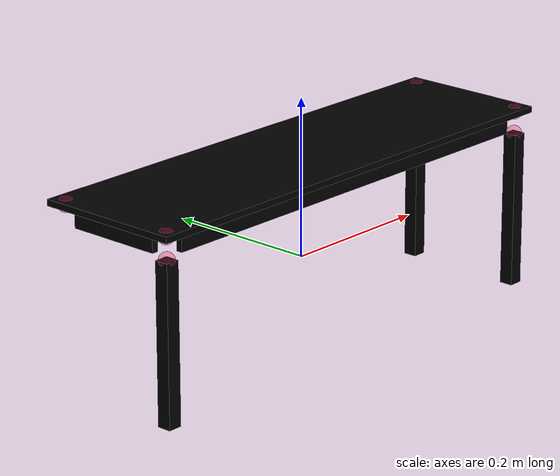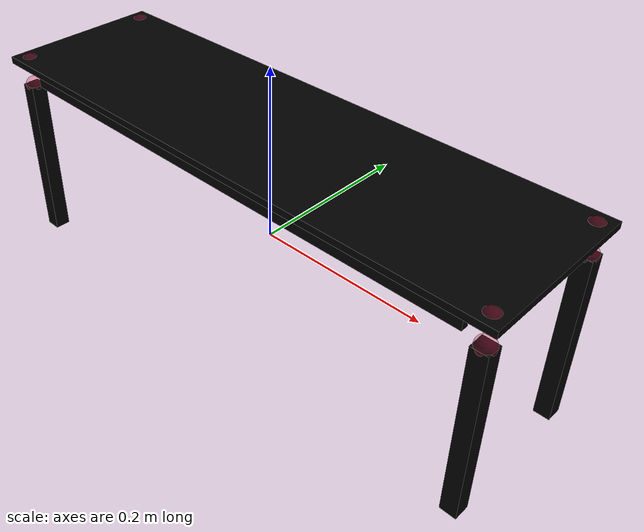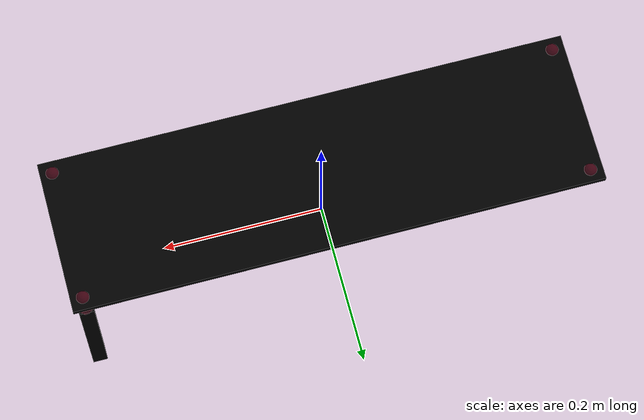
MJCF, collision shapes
<mujoco model="bench_bjursta_0210">
  <custom>
    <numeric data="0.05 0.20 0.01267 0.5 -0.5 0.5 -0.5" name="0_part0_initpos" />
    <numeric data="-0.26 0.30 0.01267 0.5 0.5 0.5 0.5" name="1_part1_initpos" />
    <numeric data="-0.26 0.20 0.01267 0.5 0.5 0.5 0.5" name="2_part2_initpos" />
    <numeric data="0.05 0.30 0.01267 0.5 -0.5 0.5 -0.5" name="3_part3_initpos" />
    <numeric data="-0.195 0.02 0.018623 0.0 1.0 0.0 0.0" name="4_part4_initpos" />
  </custom>
  <asset>
    <mesh file="bench_bjursta_0210/0.stl" name="part0" scale="0.0004 0.0004 0.0004" />
    <mesh file="bench_bjursta_0210/4.stl" name="part4" scale="0.0004 0.0004 0.0004" />
    <mesh file="bench_bjursta_0210/3.stl" name="part3" scale="0.0004 0.0004 0.0004" />
    <mesh file="bench_bjursta_0210/2.stl" name="part2" scale="0.0004 0.0004 0.0004" />
    <mesh file="bench_bjursta_0210/1.stl" name="part1" scale="0.0004 0.0004 0.0004" />
  </asset>
  <equality>
    <weld active="false" body1="0_part0" body2="4_part4" solimp="1 1 0.5" solref="0.01 0.3" />
    <weld active="false" body1="4_part4" body2="2_part2" solimp="1 1 0.5" solref="0.01 0.3" />
    <weld active="false" body1="4_part4" body2="3_part3" solimp="1 1 0.5" solref="0.01 0.3" />
    <weld active="false" body1="4_part4" body2="1_part1" solimp="1 1 0.5" solref="0.01 0.3" />
    <weld active="false" body1="1_part1" body2="4_part4" solimp="1 1 0.5" solref="0.01 0.3" />
    <weld active="false" body1="3_part3" body2="4_part4" solimp="1 1 0.5" solref="0.01 0.3" />
    <weld active="false" body1="2_part2" body2="4_part4" solimp="1 1 0.5" solref="0.01 0.3" />
    <weld active="false" body1="0_part0" body2="4_part4" solimp="1 1 0.5" solref="0.01 0.3" />
  </equality>
  <worldbody>
    <body name="0_part0" pos="-0.31 -0.08 0.0" quat="1 0 0 0">
      <geom conaffinity="0" contype="0" density="0" mesh="part0" name="0_part0_mesh" pos="0.0 0.0 0.0" rgba="0.82 0.71 0.55 1" type="mesh" />
      <site group="1" name="0_part0_ltgt_site0" pos="-0.01 0 0" rgba="0 0 0 0" size="0.01 0.01 0.01" type="sphere" />
      <site group="1" name="0_part0_rtgt_site0" pos="0.01 0 0" rgba="0 0 0 0" size="0.01 0.01 0.01" type="sphere" />
      <site name="0_part0_horizontal_radius_site" pos="0.0 -0.0 0.0" quat="1 0 0 0" rgba="0 0 0 0" size="0.02" />
      <site name="0_part0_top_site" pos="0.0 0.0 0.1" quat="1 0 0 0" rgba="0 0 0 0" size="0.02" />
      <site name="0_part0_bottom_site" pos="0.0 0.0 -0.1" quat="1 0 0 0" rgba="0 0 0 0" size="0.02" />
      <site name="0_part0_corner_site8" pos="-0.01 0.01 0.1" quat="1 0 0 0" rgba="0 0 0 0" size="0.00025" />
      <site name="0_part0_corner_site7" pos="0.01 0.01 0.1" quat="1 0 0 0" rgba="0 0 0 0" size="0.00025" />
      <site name="0_part0_corner_site6" pos="0.01 -0.01 0.1" quat="1 0 0 0" rgba="0 0 0 0" size="0.00025" />
      <site name="0_part0_corner_site5" pos="-0.01 -0.01 0.1" quat="1 0 0 0" rgba="0 0 0 0" size="0.00025" />
      <site name="0_part0_corner_site4" pos="-0.01 0.01 -0.1" quat="1 0 0 0" rgba="0 0 0 0" size="0.00025" />
      <site name="0_part0_corner_site3" pos="0.01 0.01 -0.1" quat="1 0 0 0" rgba="0 0 0 0" size="0.00025" />
      <site name="0_part0_corner_site2" pos="0.01 -0.01 -0.1" quat="1 0 0 0" rgba="0 0 0 0" size="0.00025" />
      <site name="0_part0_corner_site1" pos="-0.01 -0.01 -0.1" quat="1 0 0 0" rgba="0 0 0 0" size="0.00025" />
      <site name="leg-top,0,90,180,270,conn_site1" pos="0. 0. 0.1" quat="1 0 0 0" rgba="0.9019 0.0980 0.2941 0.3" size="0.01" />
      <geom density="50" name="noviz_collision_0_part0_0" pos="0.0 0.0 0.0" quat="1 0 0 0" rgba="0 0 0 0" size="0.009 0.009 0.1" solref="0.001 1" type="box" />
    </body>
    <body name="4_part4" pos="0. 0. 0.1206499977" quat="1 0 0 0">
      <geom conaffinity="0" contype="0" density="0" mesh="part4" name="4_part4_mesh" pos="0.0 0.0 0.0" rgba="0.82 0.71 0.55 1" type="mesh" />
      <site name="4_part4_horizontal_radius_site" pos="0.0 0.0 0.0" quat="1 0 0 0" rgba="0 0 0 0" size="0.02" />
      <site name="4_part4_top_site" pos="0.0 0.0 0.019" quat="1 0 0 0" rgba="0 0 0 0" size="0.02" />
      <site name="4_part4_bottom_site" pos="0.0 0.0 -0.019" quat="1 0 0 0" rgba="0 0 0 0" size="0.02" />
      <site name="4_part4_corner_site8" pos="-0.33 0.1 0.019" quat="1 0 0 0" rgba="0 0 0 0" size="0.00025" />
      <site name="4_part4_corner_site7" pos="0.33 0.1 0.019" quat="1 0 0 0" rgba="0 0 0 0" size="0.00025" />
      <site name="4_part4_corner_site6" pos="0.33 -0.1 0.019" quat="1 0 0 0" rgba="0 0 0 0" size="0.00025" />
      <site name="4_part4_corner_site5" pos="-0.33 -0.1 0.019" quat="1 0 0 0" rgba="0 0 0 0" size="0.00025" />
      <site name="4_part4_corner_site4" pos="-0.33 0.1 -0.019" quat="1 0 0 0" rgba="0 0 0 0" size="0.00025" />
      <site name="4_part4_corner_site3" pos="0.33 0.1 -0.019" quat="1 0 0 0" rgba="0 0 0 0" size="0.00025" />
      <site name="4_part4_corner_site2" pos="0.33 -0.1 -0.019" quat="1 0 0 0" rgba="0 0 0 0" size="0.00025" />
      <site name="4_part4_corner_site1" pos="-0.33 -0.1 -0.019" quat="1 0 0 0" rgba="0 0 0 0" size="0.00025" />
      <site name="top-leg,0,90,180,270,conn_site1" pos="-0.31 -0.08 0.00785" quat="1 0 0 0" rgba="0.9019 0.0980 0.2941 0.3" size="0.01" />
      <site name="top-leg,0,90,180,270,conn_site2" pos="-0.31 0.08 0.00785" quat="1 0 0 0" rgba="0.9019 0.0980 0.2941 0.3" size="0.01" />
      <site name="top-leg,0,90,180,270,conn_site3" pos="0.31 -0.08 0.00785" quat="1 0 0 0" rgba="0.9019 0.0980 0.2941 0.3" size="0.01" />
      <site name="top-leg,0,90,180,270,conn_site4" pos="0.31 0.08 0.00785" quat="1 0 0 0" rgba="0.9019 0.0980 0.2941 0.3" size="0.01" />
      <geom density="50" name="noviz_collision_4_part4_0" pos="0 0 0.01" quat="1 0 0 0" rgba="0 0 0 0" size="0.325 0.095 0.004" solref="0.001 1" type="box" />
      <geom density="50" name="noviz_collision_4_part4_1" pos="-0.31 0.0 -0.005" quat="1 0 0 0" rgba="0 0 0 0" size="0.004 0.062 0.011" solref="0.001 1" type="box" />
      <geom density="50" name="noviz_collision_4_part4_2" pos="0.31 0.0 -0.005" quat="1 0 0 0" rgba="0 0 0 0" size="0.004 0.062 0.011" solref="0.001 1" type="box" />
      <geom density="50" name="noviz_collision_4_part4_3" pos="0 -0.08 -0.005" quat="1 0 0 0" rgba="0 0 0 0" size="0.29 0.004 0.011" solref="0.001 1" type="box" />
      <geom density="50" name="noviz_collision_4_part4_4" pos="0 0.08 -0.005" quat="1 0 0 0" rgba="0 0 0 0" size="0.29 0.004 0.011" solref="0.001 1" type="box" />
      <geom density="50" name="noviz_collision_4_part4_5" pos="-0.005 0.0 -0.005" quat="1 0 0 0" rgba="0 0 0 0" size="0.004 0.075 0.011" solref="0.001 1" type="box" />
    </body>
    <body name="3_part3" pos="0.31 0.08 0.0" quat="1 0 0 0">
      <geom conaffinity="0" contype="0" density="0" mesh="part3" name="3_part3_mesh" pos="0.0 0.0 0.0" rgba="0.82 0.71 0.55 1" type="mesh" />
      <site group="1" name="3_part3_ltgt_site0" pos="-0.01 0 0" rgba="0 0 0 0" size="0.01 0.01 0.01" type="sphere" />
      <site group="1" name="3_part3_rtgt_site0" pos="0.01 0 0" rgba="0 0 0 0" size="0.01 0.01 0.01" type="sphere" />
      <site name="3_part3_horizontal_radius_site" pos="-0.0 -0.0 0.0" quat="1 0 0 0" rgba="0 0 0 0" size="0.02" />
      <site name="3_part3_top_site" pos="0.0 0.0 0.1" quat="1 0 0 0" rgba="0 0 0 0" size="0.02" />
      <site name="3_part3_bottom_site" pos="0.0 0.0 -0.1" quat="1 0 0 0" rgba="0 0 0 0" size="0.02" />
      <site name="3_part3_corner_site8" pos="-0.01 0.01 0.1" quat="1 0 0 0" rgba="0 0 0 0" size="0.00025" />
      <site name="3_part3_corner_site7" pos="0.01 0.01 0.1" quat="1 0 0 0" rgba="0 0 0 0" size="0.00025" />
      <site name="3_part3_corner_site6" pos="0.01 -0.01 0.1" quat="1 0 0 0" rgba="0 0 0 0" size="0.00025" />
      <site name="3_part3_corner_site5" pos="-0.01 -0.01 0.1" quat="1 0 0 0" rgba="0 0 0 0" size="0.00025" />
      <site name="3_part3_corner_site4" pos="-0.01 0.01 -0.1" quat="1 0 0 0" rgba="0 0 0 0" size="0.00025" />
      <site name="3_part3_corner_site3" pos="0.01 0.01 -0.1" quat="1 0 0 0" rgba="0 0 0 0" size="0.00025" />
      <site name="3_part3_corner_site2" pos="0.01 -0.01 -0.1" quat="1 0 0 0" rgba="0 0 0 0" size="0.00025" />
      <site name="3_part3_corner_site1" pos="-0.01 -0.01 -0.1" quat="1 0 0 0" rgba="0 0 0 0" size="0.00025" />
      <site name="leg-top,0,90,180,270,conn_site4" pos="0 0 0.1" quat="1 0 0 0" rgba="0.9019 0.0980 0.2941 0.3" size="0.01" />
      <geom density="50" name="noviz_collision_3_part3_0" pos="0.0 0.0 0.0" quat="1 0 0 0" rgba="0 0 0 0" size="0.009 0.009 0.1" solref="0.001 1" type="box" />
    </body>
    <body name="2_part2" pos="-0.31 -0.08 0.0" quat="1 0 0 0">
      <geom conaffinity="0" contype="0" density="0" mesh="part2" name="2_part2_mesh" pos="0.0 0.0 0.0" rgba="0.82 0.71 0.55 1" type="mesh" />
      <site group="1" name="2_part2_ltgt_site0" pos="-0.01 0 0" rgba="0 0 0 0" size="0.01 0.01 0.01" type="sphere" />
      <site group="1" name="2_part2_rtgt_site0" pos="0.01 0 0" rgba="0 0 0 0" size="0.01 0.01 0.01" type="sphere" />
      <site name="2_part2_horizontal_radius_site" pos="0.0 -0.0 0.0" quat="1 0 0 0" rgba="0 0 0 0" size="0.02" />
      <site name="2_part2_top_site" pos="0.0 0.0 0.1" quat="1 0 0 0" rgba="0 0 0 0" size="0.02" />
      <site name="2_part2_bottom_site" pos="0.0 0.0 -0.1" quat="1 0 0 0" rgba="0 0 0 0" size="0.02" />
      <site name="2_part2_corner_site8" pos="-0.01 0.01 0.1" quat="1 0 0 0" rgba="0 0 0 0" size="0.00025" />
      <site name="2_part2_corner_site7" pos="0.01 0.01 0.1" quat="1 0 0 0" rgba="0 0 0 0" size="0.00025" />
      <site name="2_part2_corner_site6" pos="0.01 -0.01 0.1" quat="1 0 0 0" rgba="0 0 0 0" size="0.00025" />
      <site name="2_part2_corner_site5" pos="-0.01 -0.01 0.1" quat="1 0 0 0" rgba="0 0 0 0" size="0.00025" />
      <site name="2_part2_corner_site4" pos="-0.01 0.01 -0.1" quat="1 0 0 0" rgba="0 0 0 0" size="0.00025" />
      <site name="2_part2_corner_site3" pos="0.01 0.01 -0.1" quat="1 0 0 0" rgba="0 0 0 0" size="0.00025" />
      <site name="2_part2_corner_site2" pos="0.01 -0.01 -0.1" quat="1 0 0 0" rgba="0 0 0 0" size="0.00025" />
      <site name="2_part2_corner_site1" pos="-0.01 -0.01 -0.1" quat="1 0 0 0" rgba="0 0 0 0" size="0.00025" />
      <site name="leg-top,0,90,180,270,conn_site3" pos="0 0 0.1" quat="1 0 0 0" rgba="0.9019 0.0980 0.2941 0.3" size="0.01" />
      <geom density="50" name="noviz_collision_2_part2_0" pos="0.0 0.0 0.0" quat="1 0 0 0" rgba="0 0 0 0" size="0.009 0.009 0.1" solref="0.001 1" type="box" />
    </body>
    <body name="1_part1" pos="0.31 -0.08 0.0" quat="1 0 0 0">
      <site group="1" name="1_part1_ltgt_site0" pos="-0.01 0 0" rgba="0 0 0 0" size="0.01 0.01 0.01" type="sphere" />
      <site group="1" name="1_part1_rtgt_site0" pos="0.01 0 0" rgba="0 0 0 0" size="0.01 0.01 0.01" type="sphere" />
      <geom conaffinity="0" contype="0" density="0" mesh="part1" name="1_part1_mesh" pos="0.0 0.0 0.0" rgba="0.82 0.71 0.55 1" type="mesh" />
      <site name="1_part1_horizontal_radius_site" pos="-0.0 -0.0 0.0" quat="1 0 0 0" rgba="0 0 0 0" size="0.02" />
      <site name="1_part1_top_site" pos="0.0 0.0 0.1" quat="1 0 0 0" rgba="0 0 0 0" size="0.02" />
      <site name="1_part1_bottom_site" pos="0.0 0.0 -0.1" quat="1 0 0 0" rgba="0 0 0 0" size="0.02" />
      <site name="1_part1_corner_site8" pos="-0.01 0.01 0.1" quat="1 0 0 0" rgba="0 0 0 0" size="0.00025" />
      <site name="1_part1_corner_site7" pos="0.01 0.01 0.1" quat="1 0 0 0" rgba="0 0 0 0" size="0.00025" />
      <site name="1_part1_corner_site6" pos="0.01 -0.01 0.1" quat="1 0 0 0" rgba="0 0 0 0" size="0.00025" />
      <site name="1_part1_corner_site5" pos="-0.01 -0.01 0.1" quat="1 0 0 0" rgba="0 0 0 0" size="0.00025" />
      <site name="1_part1_corner_site4" pos="-0.01 0.01 -0.1" quat="1 0 0 0" rgba="0 0 0 0" size="0.00025" />
      <site name="1_part1_corner_site3" pos="0.01 0.01 -0.1" quat="1 0 0 0" rgba="0 0 0 0" size="0.00025" />
      <site name="1_part1_corner_site2" pos="0.01 -0.01 -0.1" quat="1 0 0 0" rgba="0 0 0 0" size="0.00025" />
      <site name="1_part1_corner_site1" pos="-0.01 -0.01 -0.1" quat="1 0 0 0" rgba="0 0 0 0" size="0.00025" />
      <site name="leg-top,0,90,180,270,conn_site2" pos="0 0 0.1" quat="1 0 0 0" rgba="0.9019 0.0980 0.2941 0.3" size="0.01" />
      <geom density="50" name="noviz_collision_1_part1_0" pos="0.0 0.0 0.0" quat="1 0 0 0" rgba="0 0 0 0" size="0.009 0.009 0.1" solref="0.001 1" type="box" />
    </body>
  </worldbody>
  <actuator />
  <sensor />
  <contact />
  <default />
</mujoco>
